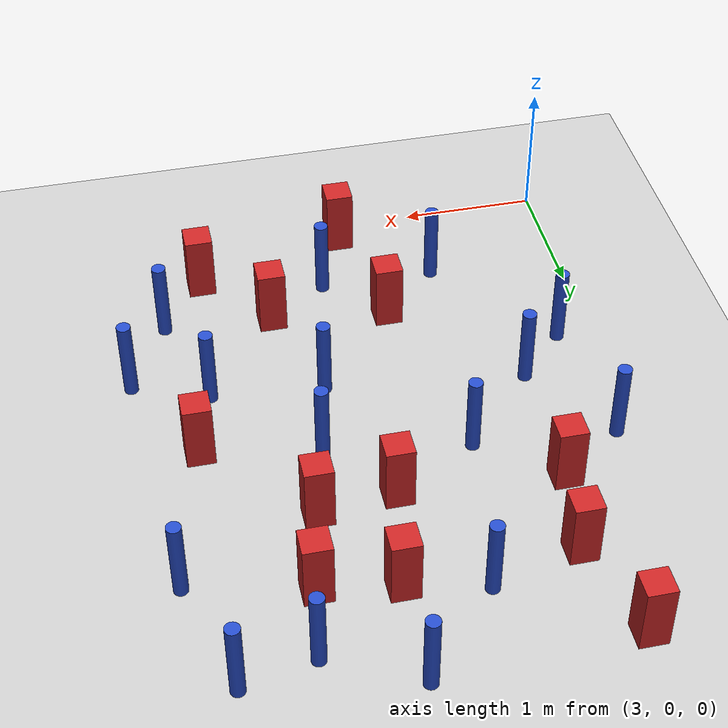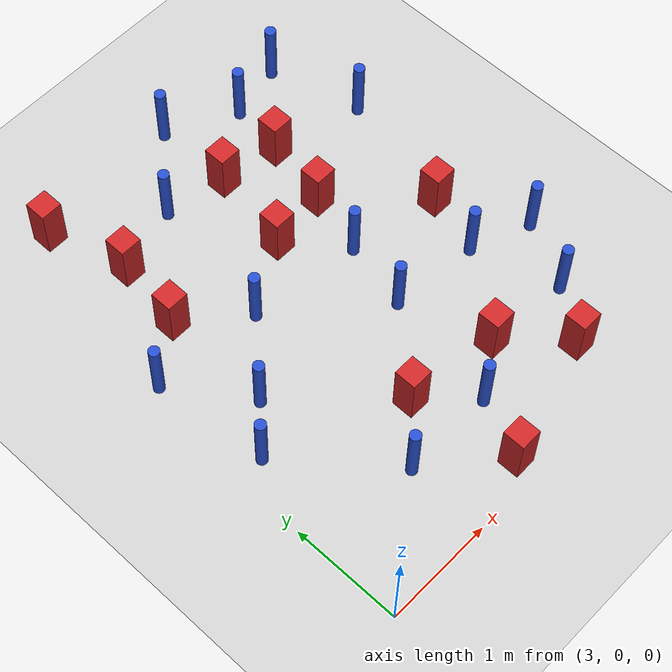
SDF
<sdf version="1.6">
 <world name="default">
  <model name="ground_plane">
   <static>1</static>
   <link name="link">
    <collision name="collision">
     <geometry><plane><normal>0 0 1</normal><size>100 100</size></plane></geometry>
     <surface><friction><ode><mu>100</mu><mu2>50</mu2></ode></friction></surface>
    </collision>
    <visual name="visual">
     <cast_shadows>0</cast_shadows>
     <geometry><plane><normal>0 0 1</normal><size>100 100</size></plane></geometry>
     <material>
      <ambient>1.0 1.0 1.0 1.0</ambient>
      <diffuse>0.8 0.8 0.8 1.0</diffuse>
      <specular>0.01 0.01 0.01 1.000000</specular>
     </material>
    </visual>
   </link>
  </model>
  <model name="pole_obstacle7">
   <static>true</static>
   <pose>6.06499540367 0.939890969461 -9.47619616065e-06 5.49618799737e-07 2.36310414061e-07 -1.550905348e-07</pose>
   <link name="link">
    <pose>0 0 0.3 0 -0 0</pose>
    <inertial>
     <mass>1</mass>
     <inertia><ixx>0.145833</ixx><ixy>0</ixy><ixz>0</ixz><iyy>0.145833</iyy><iyz>0</iyz><izz>0.125</izz></inertia>
    </inertial>
    <collision name="collision">
     <geometry><cylinder><radius>0.05</radius><length>.6</length></cylinder></geometry>
    </collision>
    <visual name="visual">
     <geometry><cylinder><radius>0.05</radius><length>.6</length></cylinder></geometry>
     <material>
      <script><name>Gazebo/Blue</name><uri>file://media/materials/scripts/gazebo.material</uri></script>
     </material>
    </visual>
   </link>
  </model>
  <model name="square_post_obstacle7">
   <static>true</static>
   <pose>5.3043008412 2.97691154818 -6.11067671241e-07 -5.50515727128e-06 -8.79689657224e-07 2.37013304536e-05</pose>
   <link name="link">
    <pose>0 0 0.25 0 -0 0</pose>
    <inertial>
     <mass>100</mass>
     <inertia>
      <ixx>0.166667</ixx>
      <ixy>0</ixy>
      <ixz>0</ixz>
      <iyy>0.166667</iyy>
      <iyz>0</iyz>
      <izz>0.166667</izz>
     </inertia>
    </inertial>
    <collision name="collision"><geometry><box><size>.2 .2 .5</size></box></geometry></collision>
    <visual name="visual">
     <geometry><box><size>.2 .2 .5</size></box></geometry>
     <material>
      <script><name>Gazebo/Red</name><uri>file://media/materials/scripts/gazebo.material</uri></script>
     </material>
    </visual>
   </link>
  </model>
  <model name="square_post_obstacle8">
   <static>true</static>
   <pose>4.60553726486 0.183681502526 -6.11067671241e-07 -5.50515727128e-06 -8.79689657224e-07 2.37013304536e-05</pose>
   <link name="link">
    <pose>0 0 0.25 0 -0 0</pose>
    <inertial>
     <mass>100</mass>
     <inertia>
      <ixx>0.166667</ixx>
      <ixy>0</ixy>
      <ixz>0</ixz>
      <iyy>0.166667</iyy>
      <iyz>0</iyz>
      <izz>0.166667</izz>
     </inertia>
    </inertial>
    <collision name="collision"><geometry><box><size>.2 .2 .5</size></box></geometry></collision>
    <visual name="visual">
     <geometry><box><size>.2 .2 .5</size></box></geometry>
     <material>
      <script><name>Gazebo/Red</name><uri>file://media/materials/scripts/gazebo.material</uri></script>
     </material>
    </visual>
   </link>
  </model>
  <model name="square_post_obstacle15">
   <static>true</static>
   <pose>5.73411436721 0.501680926353 -6.11067671241e-07 -5.50515727128e-06 -8.79689657224e-07 2.37013304536e-05</pose>
   <link name="link">
    <pose>0 0 0.25 0 -0 0</pose>
    <inertial>
     <mass>100</mass>
     <inertia>
      <ixx>0.166667</ixx>
      <ixy>0</ixy>
      <ixz>0</ixz>
      <iyy>0.166667</iyy>
      <iyz>0</iyz>
      <izz>0.166667</izz>
     </inertia>
    </inertial>
    <collision name="collision"><geometry><box><size>.2 .2 .5</size></box></geometry></collision>
    <visual name="visual">
     <geometry><box><size>.2 .2 .5</size></box></geometry>
     <material>
      <script><name>Gazebo/Red</name><uri>file://media/materials/scripts/gazebo.material</uri></script>
     </material>
    </visual>
   </link>
  </model>
  <model name="pole_obstacle51">
   <static>true</static>
   <pose>3.24884724346 1.62343270198 -9.47619616065e-06 5.49618799737e-07 2.36310414072e-07 -1.55090534793e-07</pose>
   <link name="link">
    <pose>0 0 0.3 0 -0 0</pose>
    <inertial>
     <mass>1</mass>
     <inertia><ixx>0.145833</ixx><ixy>0</ixy><ixz>0</ixz><iyy>0.145833</iyy><iyz>0</iyz><izz>0.125</izz></inertia>
    </inertial>
    <collision name="collision">
     <geometry><cylinder><radius>0.05</radius><length>.6</length></cylinder></geometry>
    </collision>
    <visual name="visual">
     <geometry><cylinder><radius>0.05</radius><length>.6</length></cylinder></geometry>
     <material>
      <script><name>Gazebo/Blue</name><uri>file://media/materials/scripts/gazebo.material</uri></script>
     </material>
    </visual>
   </link>
  </model>
  <model name="pole_obstacle52">
   <static>true</static>
   <pose>4.34293351025 3.81115949983 -9.47619616065e-06 5.49618799738e-07 2.36310414051e-07 -1.55090534805e-07</pose>
   <link name="link">
    <pose>0 0 0.3 0 -0 0</pose>
    <inertial>
     <mass>1</mass>
     <inertia><ixx>0.145833</ixx><ixy>0</ixy><ixz>0</ixz><iyy>0.145833</iyy><iyz>0</iyz><izz>0.125</izz></inertia>
    </inertial>
    <collision name="collision">
     <geometry><cylinder><radius>0.05</radius><length>.6</length></cylinder></geometry>
    </collision>
    <visual name="visual">
     <geometry><cylinder><radius>0.05</radius><length>.6</length></cylinder></geometry>
     <material>
      <script><name>Gazebo/Blue</name><uri>file://media/materials/scripts/gazebo.material</uri></script>
     </material>
    </visual>
   </link>
  </model>
  <model name="pole_obstacle66">
   <static>true</static>
   <pose>4.8318868634 0.708420121256 -9.47619616065e-06 5.49618799737e-07 2.36310414061e-07 -1.550905348e-07</pose>
   <link name="link">
    <pose>0 0 0.3 0 -0 0</pose>
    <inertial>
     <mass>1</mass>
     <inertia><ixx>0.145833</ixx><ixy>0</ixy><ixz>0</ixz><iyy>0.145833</iyy><iyz>0</iyz><izz>0.125</izz></inertia>
    </inertial>
    <collision name="collision">
     <geometry><cylinder><radius>0.05</radius><length>.6</length></cylinder></geometry>
    </collision>
    <visual name="visual">
     <geometry><cylinder><radius>0.05</radius><length>.6</length></cylinder></geometry>
     <material>
      <script><name>Gazebo/Blue</name><uri>file://media/materials/scripts/gazebo.material</uri></script>
     </material>
    </visual>
   </link>
  </model>
  <model name="square_post_obstacle61">
   <static>true</static>
   <pose>3.50031738391 4.35792662082 -6.11067671241e-07 -5.50515727128e-06 -8.79689657224e-07 2.37013304536e-05</pose>
   <link name="link">
    <pose>0 0 0.25 0 -0 0</pose>
    <inertial>
     <mass>100</mass>
     <inertia>
      <ixx>0.166667</ixx>
      <ixy>0</ixy>
      <ixz>0</ixz>
      <iyy>0.166667</iyy>
      <iyz>0</iyz>
      <izz>0.166667</izz>
     </inertia>
    </inertial>
    <collision name="collision"><geometry><box><size>.2 .2 .5</size></box></geometry></collision>
    <visual name="visual">
     <geometry><box><size>.2 .2 .5</size></box></geometry>
     <material>
      <script><name>Gazebo/Red</name><uri>file://media/materials/scripts/gazebo.material</uri></script>
     </material>
    </visual>
   </link>
  </model>
  <model name="pole_obstacle78">
   <static>true</static>
   <pose>6.26607805968 3.40137826035 -9.47619616065e-06 5.49618799738e-07 2.36310414051e-07 -1.55090534805e-07</pose>
   <link name="link">
    <pose>0 0 0.3 0 -0 0</pose>
    <inertial>
     <mass>1</mass>
     <inertia><ixx>0.145833</ixx><ixy>0</ixy><ixz>0</ixz><iyy>0.145833</iyy><iyz>0</iyz><izz>0.125</izz></inertia>
    </inertial>
    <collision name="collision">
     <geometry><cylinder><radius>0.05</radius><length>.6</length></cylinder></geometry>
    </collision>
    <visual name="visual">
     <geometry><cylinder><radius>0.05</radius><length>.6</length></cylinder></geometry>
     <material>
      <script><name>Gazebo/Blue</name><uri>file://media/materials/scripts/gazebo.material</uri></script>
     </material>
    </visual>
   </link>
  </model>
  <model name="square_post_obstacle69">
   <static>true</static>
   <pose>3.61141509784 2.99364430802 -6.11067671241e-07 -5.50515727128e-06 -8.79689657224e-07 2.37013304536e-05</pose>
   <link name="link">
    <pose>0 0 0.25 0 -0 0</pose>
    <inertial>
     <mass>100</mass>
     <inertia>
      <ixx>0.166667</ixx>
      <ixy>0</ixy>
      <ixz>0</ixz>
      <iyy>0.166667</iyy>
      <iyz>0</iyz>
      <izz>0.166667</izz>
     </inertia>
    </inertial>
    <collision name="collision"><geometry><box><size>.2 .2 .5</size></box></geometry></collision>
    <visual name="visual">
     <geometry><box><size>.2 .2 .5</size></box></geometry>
     <material>
      <script><name>Gazebo/Red</name><uri>file://media/materials/scripts/gazebo.material</uri></script>
     </material>
    </visual>
   </link>
  </model>
  <model name="pole_obstacle87">
   <static>true</static>
   <pose>5.1644105275 2.4296066887 -9.47619616065e-06 5.49618799738e-07 2.36310414051e-07 -1.55090534805e-07</pose>
   <link name="link">
    <pose>0 0 0.3 0 -0 0</pose>
    <inertial>
     <mass>1</mass>
     <inertia><ixx>0.145833</ixx><ixy>0</ixy><ixz>0</ixz><iyy>0.145833</iyy><iyz>0</iyz><izz>0.125</izz></inertia>
    </inertial>
    <collision name="collision">
     <geometry><cylinder><radius>0.05</radius><length>.6</length></cylinder></geometry>
    </collision>
    <visual name="visual">
     <geometry><cylinder><radius>0.05</radius><length>.6</length></cylinder></geometry>
     <material>
      <script><name>Gazebo/Blue</name><uri>file://media/materials/scripts/gazebo.material</uri></script>
     </material>
    </visual>
   </link>
  </model>
  <model name="pole_obstacle99">
   <static>true</static>
   <pose>5.83577588096 1.72247116176 -9.47619616065e-06 5.49618799738e-07 2.36310414071e-07 -1.55090534796e-07</pose>
   <link name="link">
    <pose>0 0 0.3 0 -0 0</pose>
    <inertial>
     <mass>1</mass>
     <inertia><ixx>0.145833</ixx><ixy>0</ixy><ixz>0</ixz><iyy>0.145833</iyy><iyz>0</iyz><izz>0.125</izz></inertia>
    </inertial>
    <collision name="collision">
     <geometry><cylinder><radius>0.05</radius><length>.6</length></cylinder></geometry>
    </collision>
    <visual name="visual">
     <geometry><cylinder><radius>0.05</radius><length>.6</length></cylinder></geometry>
     <material>
      <script><name>Gazebo/Blue</name><uri>file://media/materials/scripts/gazebo.material</uri></script>
     </material>
    </visual>
   </link>
  </model>
  <model name="pole_obstacle101">
   <static>true</static>
   <pose>3.60043306226 1.98736127653 -9.47619616065e-06 5.49618799737e-07 2.36310414056e-07 -1.55090534804e-07</pose>
   <link name="link">
    <pose>0 0 0.3 0 -0 0</pose>
    <inertial>
     <mass>1</mass>
     <inertia><ixx>0.145833</ixx><ixy>0</ixy><ixz>0</ixz><iyy>0.145833</iyy><iyz>0</iyz><izz>0.125</izz></inertia>
    </inertial>
    <collision name="collision">
     <geometry><cylinder><radius>0.05</radius><length>.6</length></cylinder></geometry>
    </collision>
    <visual name="visual">
     <geometry><cylinder><radius>0.05</radius><length>.6</length></cylinder></geometry>
     <material>
      <script><name>Gazebo/Blue</name><uri>file://media/materials/scripts/gazebo.material</uri></script>
     </material>
    </visual>
   </link>
  </model>
  <model name="square_post_obstacle111">
   <static>true</static>
   <pose>5.27441580626 1.00555682783 -6.11067671241e-07 -5.50515727128e-06 -8.79689657224e-07 2.37013304536e-05</pose>
   <link name="link">
    <pose>0 0 0.25 0 -0 0</pose>
    <inertial>
     <mass>100</mass>
     <inertia>
      <ixx>0.166667</ixx>
      <ixy>0</ixy>
      <ixz>0</ixz>
      <iyy>0.166667</iyy>
      <iyz>0</iyz>
      <izz>0.166667</izz>
     </inertia>
    </inertial>
    <collision name="collision"><geometry><box><size>.2 .2 .5</size></box></geometry></collision>
    <visual name="visual">
     <geometry><box><size>.2 .2 .5</size></box></geometry>
     <material>
      <script><name>Gazebo/Red</name><uri>file://media/materials/scripts/gazebo.material</uri></script>
     </material>
    </visual>
   </link>
  </model>
  <model name="pole_obstacle119">
   <static>true</static>
   <pose>4.89741241371 4.42916211219 -9.47619616065e-06 5.49618799737e-07 2.36310414037e-07 -1.55090534814e-07</pose>
   <link name="link">
    <pose>0 0 0.3 0 -0 0</pose>
    <inertial>
     <mass>1</mass>
     <inertia><ixx>0.145833</ixx><ixy>0</ixy><ixz>0</ixz><iyy>0.145833</iyy><iyz>0</iyz><izz>0.125</izz></inertia>
    </inertial>
    <collision name="collision">
     <geometry><cylinder><radius>0.05</radius><length>.6</length></cylinder></geometry>
    </collision>
    <visual name="visual">
     <geometry><cylinder><radius>0.05</radius><length>.6</length></cylinder></geometry>
     <material>
      <script><name>Gazebo/Blue</name><uri>file://media/materials/scripts/gazebo.material</uri></script>
     </material>
    </visual>
   </link>
  </model>
  <model name="pole_obstacle131">
   <static>true</static>
   <pose>4.14506613045 2.57159284647 -9.47619616065e-06 5.49618799738e-07 2.36310414051e-07 -1.55090534805e-07</pose>
   <link name="link">
    <pose>0 0 0.3 0 -0 0</pose>
    <inertial>
     <mass>1</mass>
     <inertia><ixx>0.145833</ixx><ixy>0</ixy><ixz>0</ixz><iyy>0.145833</iyy><iyz>0</iyz><izz>0.125</izz></inertia>
    </inertial>
    <collision name="collision">
     <geometry><cylinder><radius>0.05</radius><length>.6</length></cylinder></geometry>
    </collision>
    <visual name="visual">
     <geometry><cylinder><radius>0.05</radius><length>.6</length></cylinder></geometry>
     <material>
      <script><name>Gazebo/Blue</name><uri>file://media/materials/scripts/gazebo.material</uri></script>
     </material>
    </visual>
   </link>
  </model>
  <model name="square_post_obstacle146">
   <static>true</static>
   <pose>4.89703522449 3.68888544081 -6.11067671241e-07 -5.50515727128e-06 -8.79689657224e-07 2.37013304536e-05</pose>
   <link name="link">
    <pose>0 0 0.25 0 -0 0</pose>
    <inertial>
     <mass>100</mass>
     <inertia>
      <ixx>0.166667</ixx>
      <ixy>0</ixy>
      <ixz>0</ixz>
      <iyy>0.166667</iyy>
      <iyz>0</iyz>
      <izz>0.166667</izz>
     </inertia>
    </inertial>
    <collision name="collision"><geometry><box><size>.2 .2 .5</size></box></geometry></collision>
    <visual name="visual">
     <geometry><box><size>.2 .2 .5</size></box></geometry>
     <material>
      <script><name>Gazebo/Red</name><uri>file://media/materials/scripts/gazebo.material</uri></script>
     </material>
    </visual>
   </link>
  </model>
  <model name="square_post_obstacle151">
   <static>true</static>
   <pose>5.98783676307 2.25779820436 -6.11067671241e-07 -5.50515727128e-06 -8.79689657224e-07 2.37013304536e-05</pose>
   <link name="link">
    <pose>0 0 0.25 0 -0 0</pose>
    <inertial>
     <mass>100</mass>
     <inertia>
      <ixx>0.166667</ixx>
      <ixy>0</ixy>
      <ixz>0</ixz>
      <iyy>0.166667</iyy>
      <iyz>0</iyz>
      <izz>0.166667</izz>
     </inertia>
    </inertial>
    <collision name="collision"><geometry><box><size>.2 .2 .5</size></box></geometry></collision>
    <visual name="visual">
     <geometry><box><size>.2 .2 .5</size></box></geometry>
     <material>
      <script><name>Gazebo/Red</name><uri>file://media/materials/scripts/gazebo.material</uri></script>
     </material>
    </visual>
   </link>
  </model>
  <model name="pole_obstacle162">
   <static>true</static>
   <pose>5.51948208065 4.11993387874 -9.47619616065e-06 5.49618799737e-07 2.36310414037e-07 -1.55090534814e-07</pose>
   <link name="link">
    <pose>0 0 0.3 0 -0 0</pose>
    <inertial>
     <mass>1</mass>
     <inertia><ixx>0.145833</ixx><ixy>0</ixy><ixz>0</ixz><iyy>0.145833</iyy><iyz>0</iyz><izz>0.125</izz></inertia>
    </inertial>
    <collision name="collision">
     <geometry><cylinder><radius>0.05</radius><length>.6</length></cylinder></geometry>
    </collision>
    <visual name="visual">
     <geometry><cylinder><radius>0.05</radius><length>.6</length></cylinder></geometry>
     <material>
      <script><name>Gazebo/Blue</name><uri>file://media/materials/scripts/gazebo.material</uri></script>
     </material>
    </visual>
   </link>
  </model>
  <model name="pole_obstacle164">
   <static>true</static>
   <pose>5.02915319416 1.80529590393 -9.47619616065e-06 5.49618799738e-07 2.36310414071e-07 -1.55090534796e-07</pose>
   <link name="link">
    <pose>0 0 0.3 0 -0 0</pose>
    <inertial>
     <mass>1</mass>
     <inertia><ixx>0.145833</ixx><ixy>0</ixy><ixz>0</ixz><iyy>0.145833</iyy><iyz>0</iyz><izz>0.125</izz></inertia>
    </inertial>
    <collision name="collision">
     <geometry><cylinder><radius>0.05</radius><length>.6</length></cylinder></geometry>
    </collision>
    <visual name="visual">
     <geometry><cylinder><radius>0.05</radius><length>.6</length></cylinder></geometry>
     <material>
      <script><name>Gazebo/Blue</name><uri>file://media/materials/scripts/gazebo.material</uri></script>
     </material>
    </visual>
   </link>
  </model>
  <model name="square_post_obstacle158">
   <static>true</static>
   <pose>4.7548620249 2.91591353319 -6.11067671241e-07 -5.50515727128e-06 -8.79689657224e-07 2.37013304536e-05</pose>
   <link name="link">
    <pose>0 0 0.25 0 -0 0</pose>
    <inertial>
     <mass>100</mass>
     <inertia>
      <ixx>0.166667</ixx>
      <ixy>0</ixy>
      <ixz>0</ixz>
      <iyy>0.166667</iyy>
      <iyz>0</iyz>
      <izz>0.166667</izz>
     </inertia>
    </inertial>
    <collision name="collision"><geometry><box><size>.2 .2 .5</size></box></geometry></collision>
    <visual name="visual">
     <geometry><box><size>.2 .2 .5</size></box></geometry>
     <material>
      <script><name>Gazebo/Red</name><uri>file://media/materials/scripts/gazebo.material</uri></script>
     </material>
    </visual>
   </link>
  </model>
  <model name="pole_obstacle177">
   <static>true</static>
   <pose>3.98812587193 0.718261437214 -9.47619616065e-06 5.49618799738e-07 2.36310414077e-07 -1.55090534792e-07</pose>
   <link name="link">
    <pose>0 0 0.3 0 -0 0</pose>
    <inertial>
     <mass>1</mass>
     <inertia><ixx>0.145833</ixx><ixy>0</ixy><ixz>0</ixz><iyy>0.145833</iyy><iyz>0</iyz><izz>0.125</izz></inertia>
    </inertial>
    <collision name="collision">
     <geometry><cylinder><radius>0.05</radius><length>.6</length></cylinder></geometry>
    </collision>
    <visual name="visual">
     <geometry><cylinder><radius>0.05</radius><length>.6</length></cylinder></geometry>
     <material>
      <script><name>Gazebo/Blue</name><uri>file://media/materials/scripts/gazebo.material</uri></script>
     </material>
    </visual>
   </link>
  </model>
  <model name="square_post_obstacle175">
   <static>true</static>
   <pose>4.42491573831 1.1241980862 -6.11067671241e-07 -5.50515727128e-06 -8.79689657224e-07 2.37013304536e-05</pose>
   <link name="link">
    <pose>0 0 0.25 0 -0 0</pose>
    <inertial>
     <mass>100</mass>
     <inertia>
      <ixx>0.166667</ixx>
      <ixy>0</ixy>
      <ixz>0</ixz>
      <iyy>0.166667</iyy>
      <iyz>0</iyz>
      <izz>0.166667</izz>
     </inertia>
    </inertial>
    <collision name="collision"><geometry><box><size>.2 .2 .5</size></box></geometry></collision>
    <visual name="visual">
     <geometry><box><size>.2 .2 .5</size></box></geometry>
     <material>
      <script><name>Gazebo/Red</name><uri>file://media/materials/scripts/gazebo.material</uri></script>
     </material>
    </visual>
   </link>
  </model>
  <model name="pole_obstacle189">
   <static>true</static>
   <pose>6.37594746324 1.51747920081 -9.47619616065e-06 5.49618799738e-07 2.36310414071e-07 -1.55090534796e-07</pose>
   <link name="link">
    <pose>0 0 0.3 0 -0 0</pose>
    <inertial>
     <mass>1</mass>
     <inertia><ixx>0.145833</ixx><ixy>0</ixy><ixz>0</ixz><iyy>0.145833</iyy><iyz>0</iyz><izz>0.125</izz></inertia>
    </inertial>
    <collision name="collision">
     <geometry><cylinder><radius>0.05</radius><length>.6</length></cylinder></geometry>
    </collision>
    <visual name="visual">
     <geometry><cylinder><radius>0.05</radius><length>.6</length></cylinder></geometry>
     <material>
      <script><name>Gazebo/Blue</name><uri>file://media/materials/scripts/gazebo.material</uri></script>
     </material>
    </visual>
   </link>
  </model>
  <model name="square_post_obstacle198">
   <static>true</static>
   <pose>3.71157330862 3.63612756121 -6.11067671241e-07 -5.50515727128e-06 -8.79689657224e-07 2.37013304536e-05</pose>
   <link name="link">
    <pose>0 0 0.25 0 -0 0</pose>
    <inertial>
     <mass>100</mass>
     <inertia>
      <ixx>0.166667</ixx>
      <ixy>0</ixy>
      <ixz>0</ixz>
      <iyy>0.166667</iyy>
      <iyz>0</iyz>
      <izz>0.166667</izz>
     </inertia>
    </inertial>
    <collision name="collision"><geometry><box><size>.2 .2 .5</size></box></geometry></collision>
    <visual name="visual">
     <geometry><box><size>.2 .2 .5</size></box></geometry>
     <material>
      <script><name>Gazebo/Red</name><uri>file://media/materials/scripts/gazebo.material</uri></script>
     </material>
    </visual>
   </link>
  </model>
  <model name="pole_obstacle210">
   <static>true</static>
   <pose>6.03340933327 4.23394725976 -9.47619616065e-06 5.49618799737e-07 2.36310414037e-07 -1.55090534814e-07</pose>
   <link name="link">
    <pose>0 0 0.3 0 -0 0</pose>
    <inertial>
     <mass>1</mass>
     <inertia><ixx>0.145833</ixx><ixy>0</ixy><ixz>0</ixz><iyy>0.145833</iyy><iyz>0</iyz><izz>0.125</izz></inertia>
    </inertial>
    <collision name="collision">
     <geometry><cylinder><radius>0.05</radius><length>.6</length></cylinder></geometry>
    </collision>
    <visual name="visual">
     <geometry><cylinder><radius>0.05</radius><length>.6</length></cylinder></geometry>
     <material>
      <script><name>Gazebo/Blue</name><uri>file://media/materials/scripts/gazebo.material</uri></script>
     </material>
    </visual>
   </link>
  </model>
  <model name="pole_obstacle212">
   <static>true</static>
   <pose>3.13553563998 2.66214553875 -9.47619616065e-06 5.49618799737e-07 2.36310414051e-07 -1.55090534807e-07</pose>
   <link name="link">
    <pose>0 0 0.3 0 -0 0</pose>
    <inertial>
     <mass>1</mass>
     <inertia><ixx>0.145833</ixx><ixy>0</ixy><ixz>0</ixz><iyy>0.145833</iyy><iyz>0</iyz><izz>0.125</izz></inertia>
    </inertial>
    <collision name="collision">
     <geometry><cylinder><radius>0.05</radius><length>.6</length></cylinder></geometry>
    </collision>
    <visual name="visual">
     <geometry><cylinder><radius>0.05</radius><length>.6</length></cylinder></geometry>
     <material>
      <script><name>Gazebo/Blue</name><uri>file://media/materials/scripts/gazebo.material</uri></script>
     </material>
    </visual>
   </link>
  </model>
  <model name="square_post_obstacle219">
   <static>true</static>
   <pose>5.4329099502 3.59895997688 -6.11067671241e-07 -5.50515727128e-06 -8.79689657224e-07 2.37013304536e-05</pose>
   <link name="link">
    <pose>0 0 0.25 0 -0 0</pose>
    <inertial>
     <mass>100</mass>
     <inertia>
      <ixx>0.166667</ixx>
      <ixy>0</ixy>
      <ixz>0</ixz>
      <iyy>0.166667</iyy>
      <iyz>0</iyz>
      <izz>0.166667</izz>
     </inertia>
    </inertial>
    <collision name="collision"><geometry><box><size>.2 .2 .5</size></box></geometry></collision>
    <visual name="visual">
     <geometry><box><size>.2 .2 .5</size></box></geometry>
     <material>
      <script><name>Gazebo/Red</name><uri>file://media/materials/scripts/gazebo.material</uri></script>
     </material>
    </visual>
   </link>
  </model>
 </world>
</sdf>
